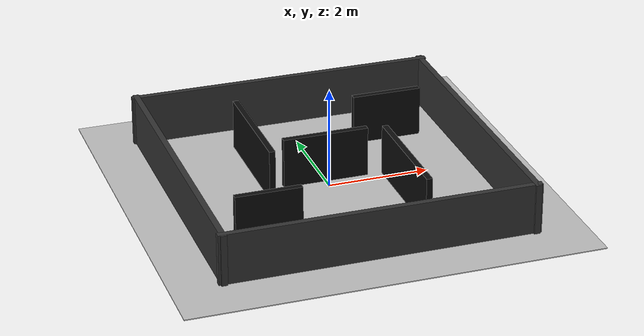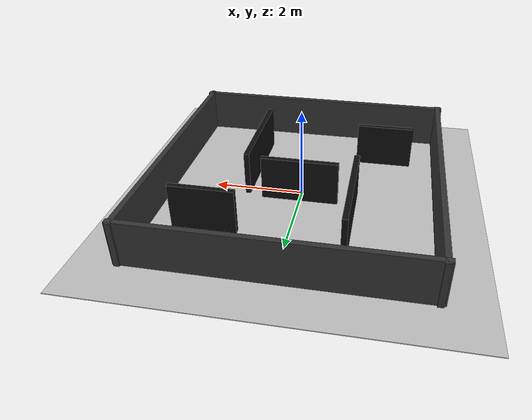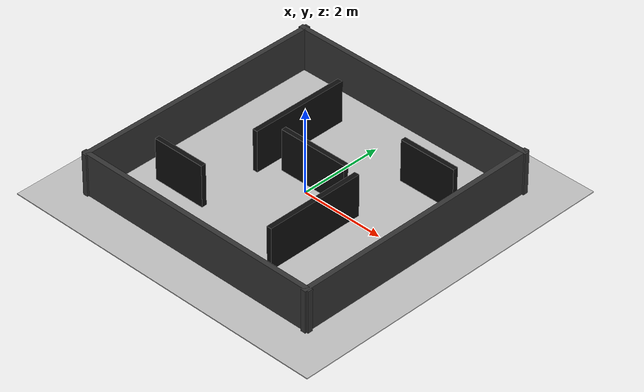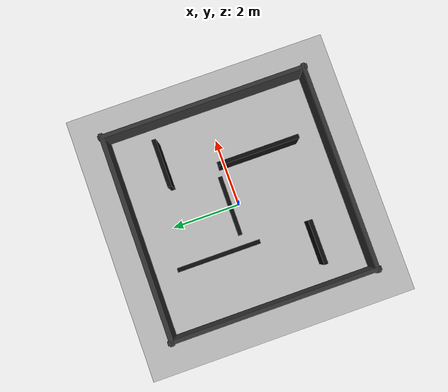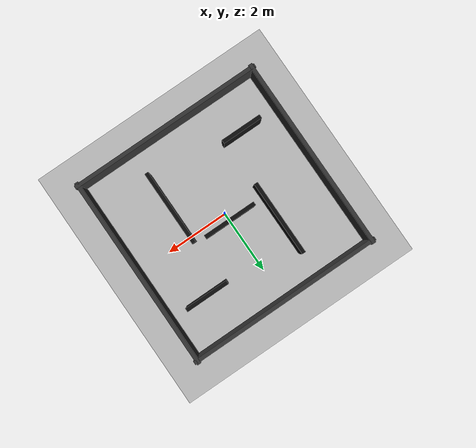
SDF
<?xml version="1.0" ?>
<sdf version="1.9">
  <world name="custom_maze_world">

    <plugin
      filename="gz-sim-physics-system"
      name="gz::sim::systems::Physics">
    </plugin>

    <plugin
      filename="gz-sim-user-commands-system"
      name="gz::sim::systems::UserCommands">
    </plugin>

    <plugin
      filename="gz-sim-scene-broadcaster-system"
      name="gz::sim::systems::SceneBroadcaster">
    </plugin>

    <plugin
      filename="gz-sim-sensors-system"
      name="gz::sim::systems::Sensors">
      <render_engine>ogre2</render_engine>
    </plugin>

    <plugin
      filename="gz-sim-imu-system"
      name="gz::sim::systems::Imu">
    </plugin>

    <gravity>0 0 -9.8</gravity>

    <light type="directional" name="sun">
      <pose>0 0 10 0 0 0</pose>
      <diffuse>0.8 0.8 0.8 1</diffuse>
      <specular>0.2 0.2 0.2 1</specular>
      <direction>-0.5 0.1 -0.9</direction>
    </light>

    <model name="ground_plane">
      <static>true</static>
      <pose>0 0 -0.01 0 0 0</pose>
      <link name="link">
        <collision name="collision">
          <geometry>
            <box>
              <size>8.0 8.0 0.02</size>
            </box>
          </geometry>
        </collision>
        <visual name="visual">
          <geometry>
            <box>
              <size>8.0 8.0 0.02</size>
            </box>
          </geometry>
          <material>
            <ambient>0.75 0.75 0.75 1</ambient>
            <diffuse>0.75 0.75 0.75 1</diffuse>
          </material>
        </visual>
      </link>
    </model>

    <!-- Внешние стены -->
    <model name="outer_wall_north">
      <static>true</static>
      <pose>0 3.0 0.5 0 0 0</pose>
      <link name="link">
        <collision name="collision">
          <geometry><box><size>6.2 0.12 1.0</size></box></geometry>
        </collision>
        <visual name="visual">
          <geometry><box><size>6.2 0.12 1.0</size></box></geometry>
          <material><ambient>0.2 0.2 0.2 1</ambient><diffuse>0.2 0.2 0.2 1</diffuse></material>
        </visual>
      </link>
    </model>

    <model name="outer_wall_south">
      <static>true</static>
      <pose>0 -3.0 0.5 0 0 0</pose>
      <link name="link">
        <collision name="collision">
          <geometry><box><size>6.2 0.12 1.0</size></box></geometry>
        </collision>
        <visual name="visual">
          <geometry><box><size>6.2 0.12 1.0</size></box></geometry>
          <material><ambient>0.2 0.2 0.2 1</ambient><diffuse>0.2 0.2 0.2 1</diffuse></material>
        </visual>
      </link>
    </model>

    <model name="outer_wall_east">
      <static>true</static>
      <pose>3.0 0 0.5 0 0 0</pose>
      <link name="link">
        <collision name="collision">
          <geometry><box><size>0.12 6.2 1.0</size></box></geometry>
        </collision>
        <visual name="visual">
          <geometry><box><size>0.12 6.2 1.0</size></box></geometry>
          <material><ambient>0.2 0.2 0.2 1</ambient><diffuse>0.2 0.2 0.2 1</diffuse></material>
        </visual>
      </link>
    </model>

    <model name="outer_wall_west">
      <static>true</static>
      <pose>-3.0 0 0.5 0 0 0</pose>
      <link name="link">
        <collision name="collision">
          <geometry><box><size>0.12 6.2 1.0</size></box></geometry>
        </collision>
        <visual name="visual">
          <geometry><box><size>0.12 6.2 1.0</size></box></geometry>
          <material><ambient>0.2 0.2 0.2 1</ambient><diffuse>0.2 0.2 0.2 1</diffuse></material>
        </visual>
      </link>
    </model>

    <!-- Внутренние стены -->
    <model name="inner_wall_1">
      <static>true</static>
      <pose>-1.2 1.0 0.5 0 0 0</pose>
      <link name="link">
        <collision name="collision">
          <geometry><box><size>0.12 2.4 1.0</size></box></geometry>
        </collision>
        <visual name="visual">
          <geometry><box><size>0.12 2.4 1.0</size></box></geometry>
          <material><ambient>0.05 0.05 0.05 1</ambient><diffuse>0.05 0.05 0.05 1</diffuse></material>
        </visual>
      </link>
    </model>

    <model name="inner_wall_2">
      <static>true</static>
      <pose>1.2 -1.0 0.5 0 0 0</pose>
      <link name="link">
        <collision name="collision">
          <geometry><box><size>0.12 2.4 1.0</size></box></geometry>
        </collision>
        <visual name="visual">
          <geometry><box><size>0.12 2.4 1.0</size></box></geometry>
          <material><ambient>0.05 0.05 0.05 1</ambient><diffuse>0.05 0.05 0.05 1</diffuse></material>
        </visual>
      </link>
    </model>

    <model name="inner_wall_3">
      <static>true</static>
      <pose>0.0 0.25 0.5 0 0 0</pose>
      <link name="link">
        <collision name="collision">
          <geometry><box><size>1.7 0.12 1.0</size></box></geometry>
        </collision>
        <visual name="visual">
          <geometry><box><size>1.7 0.12 1.0</size></box></geometry>
          <material><ambient>0.05 0.05 0.05 1</ambient><diffuse>0.05 0.05 0.05 1</diffuse></material>
        </visual>
      </link>
    </model>

    <model name="inner_wall_4">
      <static>true</static>
      <pose>-1.75 -1.7 0.5 0 0 0</pose>
      <link name="link">
        <collision name="collision">
          <geometry><box><size>1.3 0.12 1.0</size></box></geometry>
        </collision>
        <visual name="visual">
          <geometry><box><size>1.3 0.12 1.0</size></box></geometry>
          <material><ambient>0.05 0.05 0.05 1</ambient><diffuse>0.05 0.05 0.05 1</diffuse></material>
        </visual>
      </link>
    </model>

    <model name="inner_wall_5">
      <static>true</static>
      <pose>1.75 1.65 0.5 0 0 0</pose>
      <link name="link">
        <collision name="collision">
          <geometry><box><size>1.4 0.12 1.0</size></box></geometry>
        </collision>
        <visual name="visual">
          <geometry><box><size>1.4 0.12 1.0</size></box></geometry>
          <material><ambient>0.05 0.05 0.05 1</ambient><diffuse>0.05 0.05 0.05 1</diffuse></material>
        </visual>
      </link>
    </model>

  </world>
</sdf>
